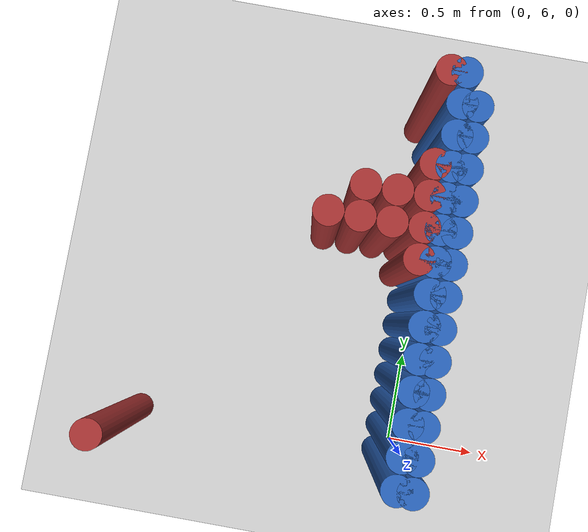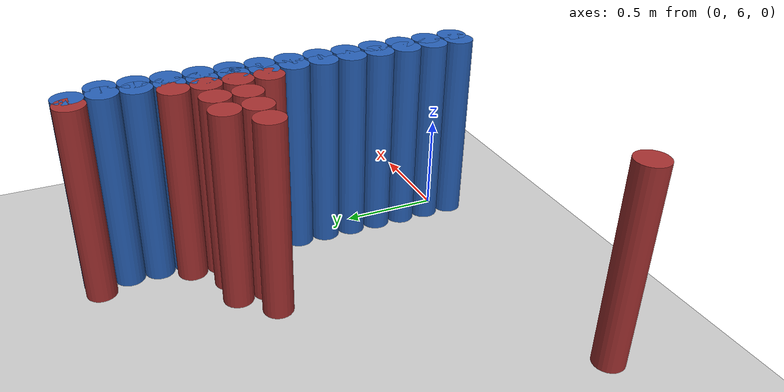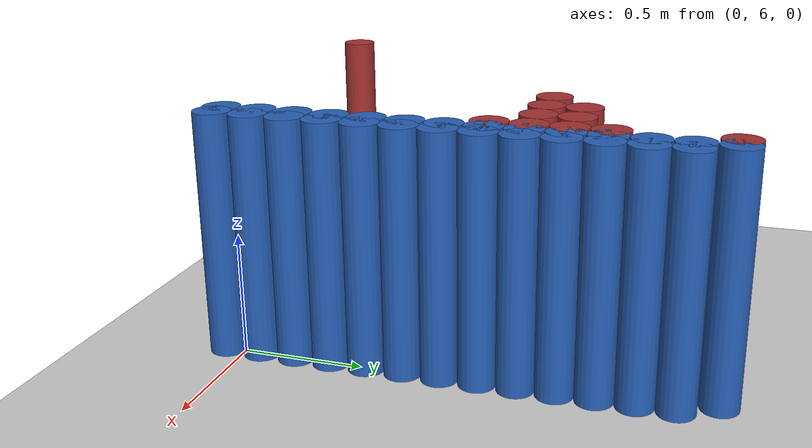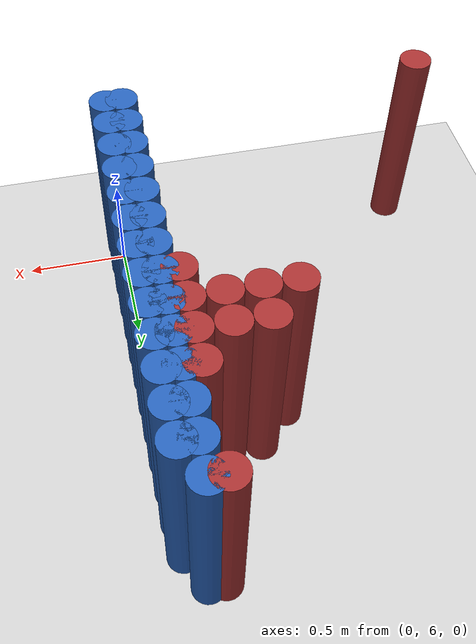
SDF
<sdf version="1.6">
 <world name="barn_world">
  <model name="ground_plane">
   <static>1</static>
   <link name="link">
    <collision name="collision">
     <geometry><plane><normal>0 0 1</normal><size>100 100</size></plane></geometry>
    </collision>
    <visual name="visual">
     <geometry><plane><normal>0 0 1</normal><size>100 100</size></plane></geometry>
     <material>
      <script><uri>file://media/materials/scripts/gazebo.material</uri><name>Gazebo/Grey</name></script>
     </material>
    </visual>
   </link>
  </model>
  <model name="unit_cylinder_167">
   <static>1</static>
   <pose>-1.5000 5.9250 0.5 0 0 0</pose>
   <link name="link">
    <collision name="collision">
     <geometry><cylinder><radius>0.075</radius><length>1</length></cylinder></geometry>
    </collision>
    <visual name="visual">
     <geometry><cylinder><radius>0.075</radius><length>1</length></cylinder></geometry>
     <material><ambient>0.648 0.192 0.192 1</ambient><diffuse>0.648 0.192 0.192 1</diffuse></material>
    </visual>
   </link>
  </model>
  <model name="unit_cylinder_171">
   <static>1</static>
   <pose>-0.6000 7.1250 0.5 0 0 0</pose>
   <link name="link">
    <collision name="collision">
     <geometry><cylinder><radius>0.075</radius><length>1</length></cylinder></geometry>
    </collision>
    <visual name="visual">
     <geometry><cylinder><radius>0.075</radius><length>1</length></cylinder></geometry>
     <material><ambient>0.648 0.192 0.192 1</ambient><diffuse>0.648 0.192 0.192 1</diffuse></material>
    </visual>
   </link>
  </model>
  <model name="unit_cylinder_174">
   <static>1</static>
   <pose>-0.4500 7.1250 0.5 0 0 0</pose>
   <link name="link">
    <collision name="collision">
     <geometry><cylinder><radius>0.075</radius><length>1</length></cylinder></geometry>
    </collision>
    <visual name="visual">
     <geometry><cylinder><radius>0.075</radius><length>1</length></cylinder></geometry>
     <material><ambient>0.648 0.192 0.192 1</ambient><diffuse>0.648 0.192 0.192 1</diffuse></material>
    </visual>
   </link>
  </model>
  <model name="unit_cylinder_175">
   <static>1</static>
   <pose>-0.4500 7.2750 0.5 0 0 0</pose>
   <link name="link">
    <collision name="collision">
     <geometry><cylinder><radius>0.075</radius><length>1</length></cylinder></geometry>
    </collision>
    <visual name="visual">
     <geometry><cylinder><radius>0.075</radius><length>1</length></cylinder></geometry>
     <material><ambient>0.648 0.192 0.192 1</ambient><diffuse>0.648 0.192 0.192 1</diffuse></material>
    </visual>
   </link>
  </model>
  <model name="unit_cylinder_177">
   <static>1</static>
   <pose>-0.3000 7.1250 0.5 0 0 0</pose>
   <link name="link">
    <collision name="collision">
     <geometry><cylinder><radius>0.075</radius><length>1</length></cylinder></geometry>
    </collision>
    <visual name="visual">
     <geometry><cylinder><radius>0.075</radius><length>1</length></cylinder></geometry>
     <material><ambient>0.648 0.192 0.192 1</ambient><diffuse>0.648 0.192 0.192 1</diffuse></material>
    </visual>
   </link>
  </model>
  <model name="unit_cylinder_178">
   <static>1</static>
   <pose>-0.3000 7.2750 0.5 0 0 0</pose>
   <link name="link">
    <collision name="collision">
     <geometry><cylinder><radius>0.075</radius><length>1</length></cylinder></geometry>
    </collision>
    <visual name="visual">
     <geometry><cylinder><radius>0.075</radius><length>1</length></cylinder></geometry>
     <material><ambient>0.648 0.192 0.192 1</ambient><diffuse>0.648 0.192 0.192 1</diffuse></material>
    </visual>
   </link>
  </model>
  <model name="unit_cylinder_179">
   <static>1</static>
   <pose>-0.1500 6.9750 0.5 0 0 0</pose>
   <link name="link">
    <collision name="collision">
     <geometry><cylinder><radius>0.075</radius><length>1</length></cylinder></geometry>
    </collision>
    <visual name="visual">
     <geometry><cylinder><radius>0.075</radius><length>1</length></cylinder></geometry>
     <material><ambient>0.648 0.192 0.192 1</ambient><diffuse>0.648 0.192 0.192 1</diffuse></material>
    </visual>
   </link>
  </model>
  <model name="unit_cylinder_180">
   <static>1</static>
   <pose>-0.1500 7.1250 0.5 0 0 0</pose>
   <link name="link">
    <collision name="collision">
     <geometry><cylinder><radius>0.075</radius><length>1</length></cylinder></geometry>
    </collision>
    <visual name="visual">
     <geometry><cylinder><radius>0.075</radius><length>1</length></cylinder></geometry>
     <material><ambient>0.648 0.192 0.192 1</ambient><diffuse>0.648 0.192 0.192 1</diffuse></material>
    </visual>
   </link>
  </model>
  <model name="unit_cylinder_181">
   <static>1</static>
   <pose>-0.1500 7.2750 0.5 0 0 0</pose>
   <link name="link">
    <collision name="collision">
     <geometry><cylinder><radius>0.075</radius><length>1</length></cylinder></geometry>
    </collision>
    <visual name="visual">
     <geometry><cylinder><radius>0.075</radius><length>1</length></cylinder></geometry>
     <material><ambient>0.648 0.192 0.192 1</ambient><diffuse>0.648 0.192 0.192 1</diffuse></material>
    </visual>
   </link>
  </model>
  <model name="unit_cylinder_182">
   <static>1</static>
   <pose>-0.1500 7.4250 0.5 0 0 0</pose>
   <link name="link">
    <collision name="collision">
     <geometry><cylinder><radius>0.075</radius><length>1</length></cylinder></geometry>
    </collision>
    <visual name="visual">
     <geometry><cylinder><radius>0.075</radius><length>1</length></cylinder></geometry>
     <material><ambient>0.648 0.192 0.192 1</ambient><diffuse>0.648 0.192 0.192 1</diffuse></material>
    </visual>
   </link>
  </model>
  <model name="unit_cylinder_183">
   <static>1</static>
   <pose>-0.1500 7.8750 0.5 0 0 0</pose>
   <link name="link">
    <collision name="collision">
     <geometry><cylinder><radius>0.075</radius><length>1</length></cylinder></geometry>
    </collision>
    <visual name="visual">
     <geometry><cylinder><radius>0.075</radius><length>1</length></cylinder></geometry>
     <material><ambient>0.648 0.192 0.192 1</ambient><diffuse>0.648 0.192 0.192 1</diffuse></material>
    </visual>
   </link>
  </model>
  <model name="unit_cylinder_189">
   <static>1</static>
   <pose>0.0000 5.9250 0.5 0 0 0</pose>
   <link name="link">
    <collision name="collision">
     <geometry><cylinder><radius>0.075</radius><length>1</length></cylinder></geometry>
    </collision>
    <visual name="visual">
     <geometry><cylinder><radius>0.075</radius><length>1</length></cylinder></geometry>
     <material><ambient>0.152 0.379 0.72 1</ambient><diffuse>0.152 0.379 0.72 1</diffuse></material>
    </visual>
   </link>
  </model>
  <model name="unit_cylinder_190">
   <static>1</static>
   <pose>0.0000 6.0750 0.5 0 0 0</pose>
   <link name="link">
    <collision name="collision">
     <geometry><cylinder><radius>0.075</radius><length>1</length></cylinder></geometry>
    </collision>
    <visual name="visual">
     <geometry><cylinder><radius>0.075</radius><length>1</length></cylinder></geometry>
     <material><ambient>0.152 0.379 0.72 1</ambient><diffuse>0.152 0.379 0.72 1</diffuse></material>
    </visual>
   </link>
  </model>
  <model name="unit_cylinder_191">
   <static>1</static>
   <pose>0.0000 6.2250 0.5 0 0 0</pose>
   <link name="link">
    <collision name="collision">
     <geometry><cylinder><radius>0.075</radius><length>1</length></cylinder></geometry>
    </collision>
    <visual name="visual">
     <geometry><cylinder><radius>0.075</radius><length>1</length></cylinder></geometry>
     <material><ambient>0.152 0.379 0.72 1</ambient><diffuse>0.152 0.379 0.72 1</diffuse></material>
    </visual>
   </link>
  </model>
  <model name="unit_cylinder_192">
   <static>1</static>
   <pose>0.0000 6.3750 0.5 0 0 0</pose>
   <link name="link">
    <collision name="collision">
     <geometry><cylinder><radius>0.075</radius><length>1</length></cylinder></geometry>
    </collision>
    <visual name="visual">
     <geometry><cylinder><radius>0.075</radius><length>1</length></cylinder></geometry>
     <material><ambient>0.152 0.379 0.72 1</ambient><diffuse>0.152 0.379 0.72 1</diffuse></material>
    </visual>
   </link>
  </model>
  <model name="unit_cylinder_193">
   <static>1</static>
   <pose>0.0000 6.5250 0.5 0 0 0</pose>
   <link name="link">
    <collision name="collision">
     <geometry><cylinder><radius>0.075</radius><length>1</length></cylinder></geometry>
    </collision>
    <visual name="visual">
     <geometry><cylinder><radius>0.075</radius><length>1</length></cylinder></geometry>
     <material><ambient>0.152 0.379 0.72 1</ambient><diffuse>0.152 0.379 0.72 1</diffuse></material>
    </visual>
   </link>
  </model>
  <model name="unit_cylinder_194">
   <static>1</static>
   <pose>0.0000 6.6750 0.5 0 0 0</pose>
   <link name="link">
    <collision name="collision">
     <geometry><cylinder><radius>0.075</radius><length>1</length></cylinder></geometry>
    </collision>
    <visual name="visual">
     <geometry><cylinder><radius>0.075</radius><length>1</length></cylinder></geometry>
     <material><ambient>0.152 0.379 0.72 1</ambient><diffuse>0.152 0.379 0.72 1</diffuse></material>
    </visual>
   </link>
  </model>
  <model name="unit_cylinder_195">
   <static>1</static>
   <pose>0.0000 6.8250 0.5 0 0 0</pose>
   <link name="link">
    <collision name="collision">
     <geometry><cylinder><radius>0.075</radius><length>1</length></cylinder></geometry>
    </collision>
    <visual name="visual">
     <geometry><cylinder><radius>0.075</radius><length>1</length></cylinder></geometry>
     <material><ambient>0.152 0.379 0.72 1</ambient><diffuse>0.152 0.379 0.72 1</diffuse></material>
    </visual>
   </link>
  </model>
  <model name="unit_cylinder_196">
   <static>1</static>
   <pose>0.0000 6.9750 0.5 0 0 0</pose>
   <link name="link">
    <collision name="collision">
     <geometry><cylinder><radius>0.075</radius><length>1</length></cylinder></geometry>
    </collision>
    <visual name="visual">
     <geometry><cylinder><radius>0.075</radius><length>1</length></cylinder></geometry>
     <material><ambient>0.152 0.379 0.72 1</ambient><diffuse>0.152 0.379 0.72 1</diffuse></material>
    </visual>
   </link>
  </model>
  <model name="unit_cylinder_197">
   <static>1</static>
   <pose>0.0000 7.1250 0.5 0 0 0</pose>
   <link name="link">
    <collision name="collision">
     <geometry><cylinder><radius>0.075</radius><length>1</length></cylinder></geometry>
    </collision>
    <visual name="visual">
     <geometry><cylinder><radius>0.075</radius><length>1</length></cylinder></geometry>
     <material><ambient>0.152 0.379 0.72 1</ambient><diffuse>0.152 0.379 0.72 1</diffuse></material>
    </visual>
   </link>
  </model>
  <model name="unit_cylinder_198">
   <static>1</static>
   <pose>0.0000 7.2750 0.5 0 0 0</pose>
   <link name="link">
    <collision name="collision">
     <geometry><cylinder><radius>0.075</radius><length>1</length></cylinder></geometry>
    </collision>
    <visual name="visual">
     <geometry><cylinder><radius>0.075</radius><length>1</length></cylinder></geometry>
     <material><ambient>0.152 0.379 0.72 1</ambient><diffuse>0.152 0.379 0.72 1</diffuse></material>
    </visual>
   </link>
  </model>
  <model name="unit_cylinder_199">
   <static>1</static>
   <pose>0.0000 7.4250 0.5 0 0 0</pose>
   <link name="link">
    <collision name="collision">
     <geometry><cylinder><radius>0.075</radius><length>1</length></cylinder></geometry>
    </collision>
    <visual name="visual">
     <geometry><cylinder><radius>0.075</radius><length>1</length></cylinder></geometry>
     <material><ambient>0.152 0.379 0.72 1</ambient><diffuse>0.152 0.379 0.72 1</diffuse></material>
    </visual>
   </link>
  </model>
  <model name="unit_cylinder_200">
   <static>1</static>
   <pose>0.0000 7.5750 0.5 0 0 0</pose>
   <link name="link">
    <collision name="collision">
     <geometry><cylinder><radius>0.075</radius><length>1</length></cylinder></geometry>
    </collision>
    <visual name="visual">
     <geometry><cylinder><radius>0.075</radius><length>1</length></cylinder></geometry>
     <material><ambient>0.152 0.379 0.72 1</ambient><diffuse>0.152 0.379 0.72 1</diffuse></material>
    </visual>
   </link>
  </model>
  <model name="unit_cylinder_201">
   <static>1</static>
   <pose>0.0000 7.7250 0.5 0 0 0</pose>
   <link name="link">
    <collision name="collision">
     <geometry><cylinder><radius>0.075</radius><length>1</length></cylinder></geometry>
    </collision>
    <visual name="visual">
     <geometry><cylinder><radius>0.075</radius><length>1</length></cylinder></geometry>
     <material><ambient>0.152 0.379 0.72 1</ambient><diffuse>0.152 0.379 0.72 1</diffuse></material>
    </visual>
   </link>
  </model>
  <model name="unit_cylinder_254">
   <static>1</static>
   <pose>-0.0750 5.9250 0.5 0 0 0</pose>
   <link name="link">
    <collision name="collision">
     <geometry><cylinder><radius>0.075</radius><length>1</length></cylinder></geometry>
    </collision>
    <visual name="visual">
     <geometry><cylinder><radius>0.075</radius><length>1</length></cylinder></geometry>
     <material><ambient>0.152 0.379 0.72 1</ambient><diffuse>0.152 0.379 0.72 1</diffuse></material>
    </visual>
   </link>
  </model>
  <model name="unit_cylinder_256">
   <static>1</static>
   <pose>-0.0750 6.0750 0.5 0 0 0</pose>
   <link name="link">
    <collision name="collision">
     <geometry><cylinder><radius>0.075</radius><length>1</length></cylinder></geometry>
    </collision>
    <visual name="visual">
     <geometry><cylinder><radius>0.075</radius><length>1</length></cylinder></geometry>
     <material><ambient>0.152 0.379 0.72 1</ambient><diffuse>0.152 0.379 0.72 1</diffuse></material>
    </visual>
   </link>
  </model>
  <model name="unit_cylinder_258">
   <static>1</static>
   <pose>-0.0750 6.2250 0.5 0 0 0</pose>
   <link name="link">
    <collision name="collision">
     <geometry><cylinder><radius>0.075</radius><length>1</length></cylinder></geometry>
    </collision>
    <visual name="visual">
     <geometry><cylinder><radius>0.075</radius><length>1</length></cylinder></geometry>
     <material><ambient>0.152 0.379 0.72 1</ambient><diffuse>0.152 0.379 0.72 1</diffuse></material>
    </visual>
   </link>
  </model>
  <model name="unit_cylinder_260">
   <static>1</static>
   <pose>-0.0750 6.3750 0.5 0 0 0</pose>
   <link name="link">
    <collision name="collision">
     <geometry><cylinder><radius>0.075</radius><length>1</length></cylinder></geometry>
    </collision>
    <visual name="visual">
     <geometry><cylinder><radius>0.075</radius><length>1</length></cylinder></geometry>
     <material><ambient>0.152 0.379 0.72 1</ambient><diffuse>0.152 0.379 0.72 1</diffuse></material>
    </visual>
   </link>
  </model>
  <model name="unit_cylinder_262">
   <static>1</static>
   <pose>-0.0750 6.5250 0.5 0 0 0</pose>
   <link name="link">
    <collision name="collision">
     <geometry><cylinder><radius>0.075</radius><length>1</length></cylinder></geometry>
    </collision>
    <visual name="visual">
     <geometry><cylinder><radius>0.075</radius><length>1</length></cylinder></geometry>
     <material><ambient>0.152 0.379 0.72 1</ambient><diffuse>0.152 0.379 0.72 1</diffuse></material>
    </visual>
   </link>
  </model>
  <model name="unit_cylinder_264">
   <static>1</static>
   <pose>-0.0750 6.6750 0.5 0 0 0</pose>
   <link name="link">
    <collision name="collision">
     <geometry><cylinder><radius>0.075</radius><length>1</length></cylinder></geometry>
    </collision>
    <visual name="visual">
     <geometry><cylinder><radius>0.075</radius><length>1</length></cylinder></geometry>
     <material><ambient>0.152 0.379 0.72 1</ambient><diffuse>0.152 0.379 0.72 1</diffuse></material>
    </visual>
   </link>
  </model>
  <model name="unit_cylinder_266">
   <static>1</static>
   <pose>-0.0750 6.8250 0.5 0 0 0</pose>
   <link name="link">
    <collision name="collision">
     <geometry><cylinder><radius>0.075</radius><length>1</length></cylinder></geometry>
    </collision>
    <visual name="visual">
     <geometry><cylinder><radius>0.075</radius><length>1</length></cylinder></geometry>
     <material><ambient>0.152 0.379 0.72 1</ambient><diffuse>0.152 0.379 0.72 1</diffuse></material>
    </visual>
   </link>
  </model>
  <model name="unit_cylinder_268">
   <static>1</static>
   <pose>-0.0750 6.9750 0.5 0 0 0</pose>
   <link name="link">
    <collision name="collision">
     <geometry><cylinder><radius>0.075</radius><length>1</length></cylinder></geometry>
    </collision>
    <visual name="visual">
     <geometry><cylinder><radius>0.075</radius><length>1</length></cylinder></geometry>
     <material><ambient>0.152 0.379 0.72 1</ambient><diffuse>0.152 0.379 0.72 1</diffuse></material>
    </visual>
   </link>
  </model>
  <model name="unit_cylinder_270">
   <static>1</static>
   <pose>-0.0750 7.1250 0.5 0 0 0</pose>
   <link name="link">
    <collision name="collision">
     <geometry><cylinder><radius>0.075</radius><length>1</length></cylinder></geometry>
    </collision>
    <visual name="visual">
     <geometry><cylinder><radius>0.075</radius><length>1</length></cylinder></geometry>
     <material><ambient>0.152 0.379 0.72 1</ambient><diffuse>0.152 0.379 0.72 1</diffuse></material>
    </visual>
   </link>
  </model>
  <model name="unit_cylinder_272">
   <static>1</static>
   <pose>-0.0750 7.2750 0.5 0 0 0</pose>
   <link name="link">
    <collision name="collision">
     <geometry><cylinder><radius>0.075</radius><length>1</length></cylinder></geometry>
    </collision>
    <visual name="visual">
     <geometry><cylinder><radius>0.075</radius><length>1</length></cylinder></geometry>
     <material><ambient>0.152 0.379 0.72 1</ambient><diffuse>0.152 0.379 0.72 1</diffuse></material>
    </visual>
   </link>
  </model>
  <model name="unit_cylinder_274">
   <static>1</static>
   <pose>-0.0750 7.4250 0.5 0 0 0</pose>
   <link name="link">
    <collision name="collision">
     <geometry><cylinder><radius>0.075</radius><length>1</length></cylinder></geometry>
    </collision>
    <visual name="visual">
     <geometry><cylinder><radius>0.075</radius><length>1</length></cylinder></geometry>
     <material><ambient>0.152 0.379 0.72 1</ambient><diffuse>0.152 0.379 0.72 1</diffuse></material>
    </visual>
   </link>
  </model>
  <model name="unit_cylinder_276">
   <static>1</static>
   <pose>-0.0750 7.5750 0.5 0 0 0</pose>
   <link name="link">
    <collision name="collision">
     <geometry><cylinder><radius>0.075</radius><length>1</length></cylinder></geometry>
    </collision>
    <visual name="visual">
     <geometry><cylinder><radius>0.075</radius><length>1</length></cylinder></geometry>
     <material><ambient>0.152 0.379 0.72 1</ambient><diffuse>0.152 0.379 0.72 1</diffuse></material>
    </visual>
   </link>
  </model>
  <model name="unit_cylinder_278">
   <static>1</static>
   <pose>-0.0750 7.7250 0.5 0 0 0</pose>
   <link name="link">
    <collision name="collision">
     <geometry><cylinder><radius>0.075</radius><length>1</length></cylinder></geometry>
    </collision>
    <visual name="visual">
     <geometry><cylinder><radius>0.075</radius><length>1</length></cylinder></geometry>
     <material><ambient>0.152 0.379 0.72 1</ambient><diffuse>0.152 0.379 0.72 1</diffuse></material>
    </visual>
   </link>
  </model>
  <model name="unit_cylinder_280">
   <static>1</static>
   <pose>-0.0750 7.8750 0.5 0 0 0</pose>
   <link name="link">
    <collision name="collision">
     <geometry><cylinder><radius>0.075</radius><length>1</length></cylinder></geometry>
    </collision>
    <visual name="visual">
     <geometry><cylinder><radius>0.075</radius><length>1</length></cylinder></geometry>
     <material><ambient>0.152 0.379 0.72 1</ambient><diffuse>0.152 0.379 0.72 1</diffuse></material>
    </visual>
   </link>
  </model>
 </world>
</sdf>
